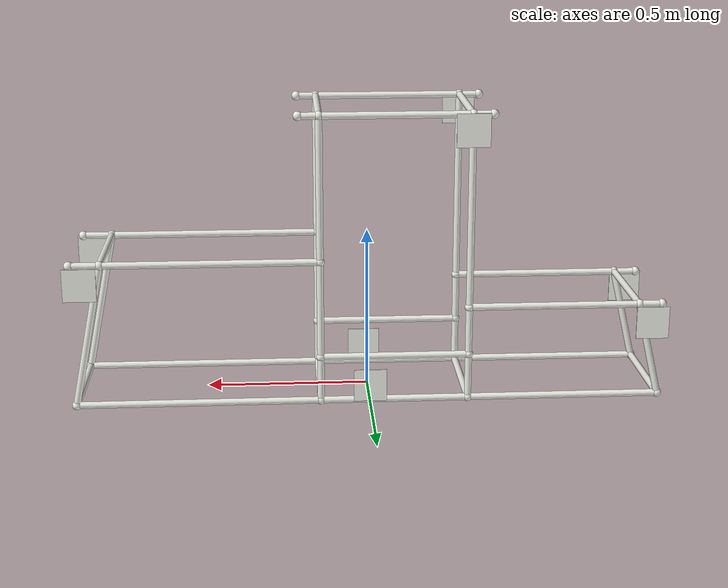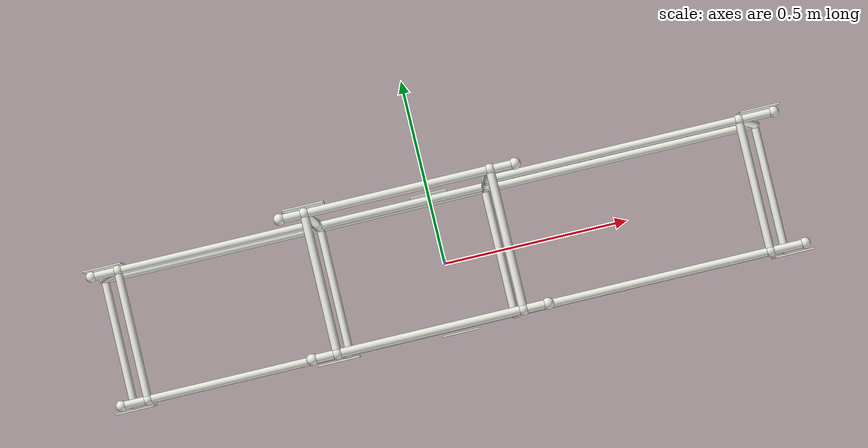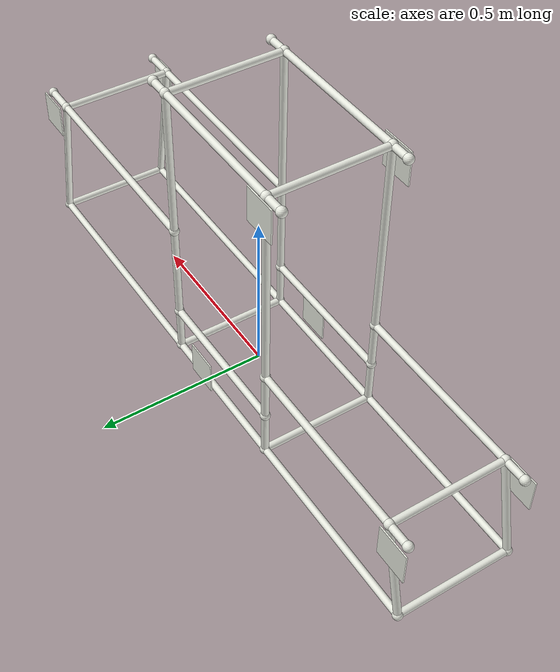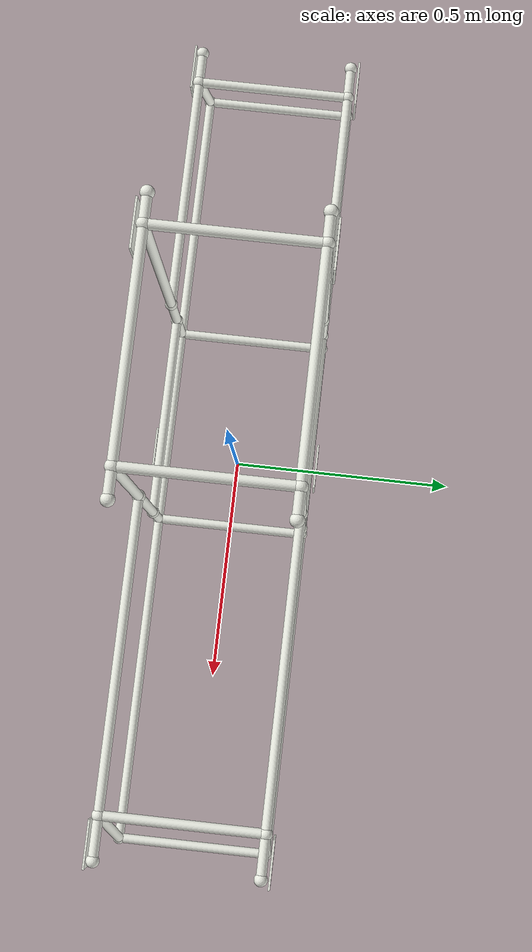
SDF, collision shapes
<?xml version='1.0' encoding='utf-8'?>
<sdf version="1.10">
  <model name="pvc_coral_garden">
    <static>true</static>
    <link name="pvc_frame">
      <collision name="base_longitudinal_00">
        <pose>0.000000000 -0.169500000 0.010500000 -0.000000000 1.570796327 0.000000000</pose>
        <geometry>
          <cylinder>
            <radius>0.0105</radius>
            <length>1.779000000</length>
          </cylinder>
        </geometry>
      </collision>
      <collision name="left_bay_rail_01">
        <pose>-0.594750000 -0.169500000 0.300000000 -0.000000000 1.570796327 0.000000000</pose>
        <geometry>
          <cylinder>
            <radius>0.0105</radius>
            <length>0.589500000</length>
          </cylinder>
        </geometry>
      </collision>
      <collision name="right_bay_rail_02">
        <pose>0.519750000 -0.169500000 0.450000000 -0.000000000 1.570796327 0.000000000</pose>
        <geometry>
          <cylinder>
            <radius>0.0105</radius>
            <length>0.739500000</length>
          </cylinder>
        </geometry>
      </collision>
      <collision name="central_upright_03">
        <pose>-0.300000000 -0.169500000 0.450000000 0.000000000 0.000000000 0.000000000</pose>
        <geometry>
          <cylinder>
            <radius>0.0105</radius>
            <length>0.879</length>
          </cylinder>
        </geometry>
      </collision>
      <collision name="central_upright_04">
        <pose>0.150000000 -0.169500000 0.450000000 0.000000000 0.000000000 0.000000000</pose>
        <geometry>
          <cylinder>
            <radius>0.0105</radius>
            <length>0.879</length>
          </cylinder>
        </geometry>
      </collision>
      <collision name="central_header_05">
        <pose>-0.075000000 -0.169500000 0.889500000 -0.000000000 1.570796327 0.000000000</pose>
        <geometry>
          <cylinder>
            <radius>0.0105</radius>
            <length>0.570000000</length>
          </cylinder>
        </geometry>
      </collision>
      <collision name="left_end_riser_06">
        <pose>-0.854750000 -0.169500000 0.155250000 0.000000000 0.235610302 0.000000000</pose>
        <geometry>
          <cylinder>
            <radius>0.0105</radius>
            <length>0.297725545</length>
          </cylinder>
        </geometry>
      </collision>
      <collision name="right_end_riser_07">
        <pose>0.844750000 -0.169500000 0.230250000 0.000000000 -0.200893578 0.000000000</pose>
        <geometry>
          <cylinder>
            <radius>0.0105</radius>
            <length>0.448520345</length>
          </cylinder>
        </geometry>
      </collision>
      <collision name="base_longitudinal_08">
        <pose>0.000000000 0.169500000 0.010500000 -0.000000000 1.570796327 0.000000000</pose>
        <geometry>
          <cylinder>
            <radius>0.0105</radius>
            <length>1.779000000</length>
          </cylinder>
        </geometry>
      </collision>
      <collision name="left_bay_rail_09">
        <pose>-0.594750000 0.169500000 0.300000000 -0.000000000 1.570796327 0.000000000</pose>
        <geometry>
          <cylinder>
            <radius>0.0105</radius>
            <length>0.589500000</length>
          </cylinder>
        </geometry>
      </collision>
      <collision name="right_bay_rail_10">
        <pose>0.519750000 0.169500000 0.450000000 -0.000000000 1.570796327 0.000000000</pose>
        <geometry>
          <cylinder>
            <radius>0.0105</radius>
            <length>0.739500000</length>
          </cylinder>
        </geometry>
      </collision>
      <collision name="central_upright_11">
        <pose>-0.300000000 0.169500000 0.450000000 0.000000000 0.000000000 0.000000000</pose>
        <geometry>
          <cylinder>
            <radius>0.0105</radius>
            <length>0.879000000</length>
          </cylinder>
        </geometry>
      </collision>
      <collision name="central_upright_12">
        <pose>0.150000000 0.169500000 0.450000000 0.000000000 0.000000000 0.000000000</pose>
        <geometry>
          <cylinder>
            <radius>0.0105</radius>
            <length>0.879000000</length>
          </cylinder>
        </geometry>
      </collision>
      <collision name="central_header_13">
        <pose>-0.075000000 0.169500000 0.889500000 -0.000000000 1.570796327 0.000000000</pose>
        <geometry>
          <cylinder>
            <radius>0.0105</radius>
            <length>0.570000000</length>
          </cylinder>
        </geometry>
      </collision>
      <collision name="left_end_riser_14">
        <pose>-0.854750000 0.169500000 0.155250000 0.000000000 0.235610302 0.000000000</pose>
        <geometry>
          <cylinder>
            <radius>0.0105</radius>
            <length>0.297725545</length>
          </cylinder>
        </geometry>
      </collision>
      <collision name="right_end_riser_15">
        <pose>0.844750000 0.169500000 0.230250000 0.000000000 -0.200893578 0.000000000</pose>
        <geometry>
          <cylinder>
            <radius>0.0105</radius>
            <length>0.448520345</length>
          </cylinder>
        </geometry>
      </collision>
      <collision name="base_crossmember_16">
        <pose>-0.889500000 0.000000000 0.010500000 -1.570796327 1.570796327 0.000000000</pose>
        <geometry>
          <cylinder>
            <radius>0.0105</radius>
            <length>0.339000000</length>
          </cylinder>
        </geometry>
      </collision>
      <collision name="base_crossmember_17">
        <pose>-0.300000000 0.000000000 0.010500000 -1.570796327 1.570796327 0.000000000</pose>
        <geometry>
          <cylinder>
            <radius>0.0105</radius>
            <length>0.339000000</length>
          </cylinder>
        </geometry>
      </collision>
      <collision name="base_crossmember_18">
        <pose>0.150000000 0.000000000 0.010500000 -1.570796327 1.570796327 0.000000000</pose>
        <geometry>
          <cylinder>
            <radius>0.0105</radius>
            <length>0.339000000</length>
          </cylinder>
        </geometry>
      </collision>
      <collision name="base_crossmember_19">
        <pose>0.889500000 0.000000000 0.010500000 -1.570796327 1.570796327 0.000000000</pose>
        <geometry>
          <cylinder>
            <radius>0.0105</radius>
            <length>0.339000000</length>
          </cylinder>
        </geometry>
      </collision>
      <collision name="left_top_crossmember_20">
        <pose>-0.820000000 0.000000000 0.300000000 -1.570796327 1.570796327 0.000000000</pose>
        <geometry>
          <cylinder>
            <radius>0.0105</radius>
            <length>0.339000000</length>
          </cylinder>
        </geometry>
      </collision>
      <collision name="right_top_crossmember_21">
        <pose>0.800000000 0.000000000 0.450000000 -1.570796327 1.570796327 0.000000000</pose>
        <geometry>
          <cylinder>
            <radius>0.0105</radius>
            <length>0.339000000</length>
          </cylinder>
        </geometry>
      </collision>
      <collision name="ridge_crossmember_22">
        <pose>-0.300000000 0.000000000 0.889500000 -1.570796327 0.000000000 0.000000000</pose>
        <geometry>
          <cylinder>
            <radius>0.0105</radius>
            <length>.339</length>
          </cylinder>
        </geometry>
      </collision>
      <collision name="ridge_crossmember_23">
        <pose>0.150000000 0.000000000 0.889500000 -1.570796327 0.000000000 0.000000000</pose>
        <geometry>
          <cylinder>
            <radius>0.0105</radius>
            <length>.339</length>
          </cylinder>
        </geometry>
      </collision>
      <collision name="central_lower_rail_24">
        <pose>-0.075000000 -0.169500000 0.150000000 -0.000000000 1.570796327 0.000000000</pose>
        <geometry>
          <cylinder>
            <radius>0.0105</radius>
            <length>0.450000000</length>
          </cylinder>
        </geometry>
      </collision>
      <collision name="central_lower_rail_25">
        <pose>-0.075000000 0.169500000 0.150000000 -0.000000000 1.570796327 0.000000000</pose>
        <geometry>
          <cylinder>
            <radius>0.0105</radius>
            <length>0.450000000</length>
          </cylinder>
        </geometry>
      </collision>
      <visual name="white_pvc">
        <geometry>
          <mesh>
            <uri>model://robot_description/worlds/assets/coral_garden/meshes/pvc_frame.stl</uri>
          </mesh>
        </geometry>
        <material>
          <ambient>.92 .93 .89 1</ambient>
          <diffuse>.92 .93 .89 1</diffuse>
          <specular>.18 .18 .18 1</specular>
        </material>
      </visual>
      <collision name="left_red_collision">
        <pose>-0.86 -0.1875 0.245 0 0 0</pose>
        <geometry>
          <box>
            <size>.1 .004 .1</size>
          </box>
        </geometry>
      </collision>
      <visual name="target_left_red_front">
        <pose>-0.86 -0.1896 0.245 0 0 0</pose>
        <geometry>
          <box>
            <size>.1 .0002 .1</size>
          </box>
        </geometry>
        <material>
          <ambient>.85 .025 .035 1</ambient>
          <diffuse>.85 .025 .035 1</diffuse>
          <specular>.18 .18 .18 1</specular>
        </material>
      </visual>
      <visual name="target_left_red_back">
        <pose>-0.86 -0.1854 0.245 0 0 0</pose>
        <geometry>
          <box>
            <size>.1 .0002 .1</size>
          </box>
        </geometry>
        <material>
          <ambient>.85 .025 .035 1</ambient>
          <diffuse>.85 .025 .035 1</diffuse>
          <specular>.18 .18 .18 1</specular>
        </material>
      </visual>
      <collision name="upper_red_collision">
        <pose>-0.3 -0.1875 .8445 0 0 0</pose>
        <geometry>
          <box>
            <size>.1 .004 .1</size>
          </box>
        </geometry>
      </collision>
      <visual name="target_upper_red_front">
        <pose>-0.3 -0.1896 .8445 0 0 0</pose>
        <geometry>
          <box>
            <size>.1 .0002 .1</size>
          </box>
        </geometry>
        <material>
          <ambient>.85 .025 .035 1</ambient>
          <diffuse>.85 .025 .035 1</diffuse>
          <specular>.18 .18 .18 1</specular>
        </material>
      </visual>
      <visual name="target_upper_red_back">
        <pose>-0.3 -0.1854 .8445 0 0 0</pose>
        <geometry>
          <box>
            <size>.1 .0002 .1</size>
          </box>
        </geometry>
        <material>
          <ambient>.85 .025 .035 1</ambient>
          <diffuse>.85 .025 .035 1</diffuse>
          <specular>.18 .18 .18 1</specular>
        </material>
      </visual>
      <collision name="bottom_red_collision">
        <pose>0 -0.1875 0.062 0 0 0</pose>
        <geometry>
          <box>
            <size>.1 .004 .1</size>
          </box>
        </geometry>
      </collision>
      <visual name="target_bottom_red_front">
        <pose>0 -0.1896 0.062 0 0 0</pose>
        <geometry>
          <box>
            <size>.1 .0002 .1</size>
          </box>
        </geometry>
        <material>
          <ambient>.85 .025 .035 1</ambient>
          <diffuse>.85 .025 .035 1</diffuse>
          <specular>.18 .18 .18 1</specular>
        </material>
      </visual>
      <visual name="target_bottom_red_back">
        <pose>0 -0.1854 0.062 0 0 0</pose>
        <geometry>
          <box>
            <size>.1 .0002 .1</size>
          </box>
        </geometry>
        <material>
          <ambient>.85 .025 .035 1</ambient>
          <diffuse>.85 .025 .035 1</diffuse>
          <specular>.18 .18 .18 1</specular>
        </material>
      </visual>
      <collision name="right_red_collision">
        <pose>0.86 -0.1875 0.395 0 0 0</pose>
        <geometry>
          <box>
            <size>.1 .004 .1</size>
          </box>
        </geometry>
      </collision>
      <visual name="target_right_red_front">
        <pose>0.86 -0.1896 0.395 0 0 0</pose>
        <geometry>
          <box>
            <size>.1 .0002 .1</size>
          </box>
        </geometry>
        <material>
          <ambient>.85 .025 .035 1</ambient>
          <diffuse>.85 .025 .035 1</diffuse>
          <specular>.18 .18 .18 1</specular>
        </material>
      </visual>
      <visual name="target_right_red_back">
        <pose>0.86 -0.1854 0.395 0 0 0</pose>
        <geometry>
          <box>
            <size>.1 .0002 .1</size>
          </box>
        </geometry>
        <material>
          <ambient>.85 .025 .035 1</ambient>
          <diffuse>.85 .025 .035 1</diffuse>
          <specular>.18 .18 .18 1</specular>
        </material>
      </visual>
      <collision name="left_red_collision_mirrored">
        <pose>-0.86 0.1875 0.245 0 0 0</pose>
        <geometry>
          <box>
            <size>.1 .004 .1</size>
          </box>
        </geometry>
      </collision>
      <visual name="target_left_red_front_mirrored">
        <pose>-0.86 0.1896 0.245 0 0 0</pose>
        <geometry>
          <box>
            <size>.1 .0002 .1</size>
          </box>
        </geometry>
        <material>
          <ambient>.85 .025 .035 1</ambient>
          <diffuse>.85 .025 .035 1</diffuse>
          <specular>.18 .18 .18 1</specular>
        </material>
      </visual>
      <visual name="target_left_red_back_mirrored">
        <pose>-0.86 0.1854 0.245 0 0 0</pose>
        <geometry>
          <box>
            <size>.1 .0002 .1</size>
          </box>
        </geometry>
        <material>
          <ambient>.85 .025 .035 1</ambient>
          <diffuse>.85 .025 .035 1</diffuse>
          <specular>.18 .18 .18 1</specular>
        </material>
      </visual>
      <collision name="upper_red_collision_mirrored">
        <pose>-0.3 0.1875 .8445 0 0 0</pose>
        <geometry>
          <box>
            <size>.1 .004 .1</size>
          </box>
        </geometry>
      </collision>
      <visual name="target_upper_red_front_mirrored">
        <pose>-0.3 0.1896 .8445 0 0 0</pose>
        <geometry>
          <box>
            <size>.1 .0002 .1</size>
          </box>
        </geometry>
        <material>
          <ambient>.85 .025 .035 1</ambient>
          <diffuse>.85 .025 .035 1</diffuse>
          <specular>.18 .18 .18 1</specular>
        </material>
      </visual>
      <visual name="target_upper_red_back_mirrored">
        <pose>-0.3 0.1854 .8445 0 0 0</pose>
        <geometry>
          <box>
            <size>.1 .0002 .1</size>
          </box>
        </geometry>
        <material>
          <ambient>.85 .025 .035 1</ambient>
          <diffuse>.85 .025 .035 1</diffuse>
          <specular>.18 .18 .18 1</specular>
        </material>
      </visual>
      <collision name="bottom_red_collision_mirrored">
        <pose>0 0.1875 0.062 0 0 0</pose>
        <geometry>
          <box>
            <size>.1 .004 .1</size>
          </box>
        </geometry>
      </collision>
      <visual name="target_bottom_red_front_mirrored">
        <pose>0 0.1896 0.062 0 0 0</pose>
        <geometry>
          <box>
            <size>.1 .0002 .1</size>
          </box>
        </geometry>
        <material>
          <ambient>.85 .025 .035 1</ambient>
          <diffuse>.85 .025 .035 1</diffuse>
          <specular>.18 .18 .18 1</specular>
        </material>
      </visual>
      <visual name="target_bottom_red_back_mirrored">
        <pose>0 0.1854 0.062 0 0 0</pose>
        <geometry>
          <box>
            <size>.1 .0002 .1</size>
          </box>
        </geometry>
        <material>
          <ambient>.85 .025 .035 1</ambient>
          <diffuse>.85 .025 .035 1</diffuse>
          <specular>.18 .18 .18 1</specular>
        </material>
      </visual>
      <collision name="right_red_collision_mirrored">
        <pose>0.86 0.1875 0.395 0 0 0</pose>
        <geometry>
          <box>
            <size>.1 .004 .1</size>
          </box>
        </geometry>
      </collision>
      <visual name="target_right_red_front_mirrored">
        <pose>0.86 0.1896 0.395 0 0 0</pose>
        <geometry>
          <box>
            <size>.1 .0002 .1</size>
          </box>
        </geometry>
        <material>
          <ambient>.85 .025 .035 1</ambient>
          <diffuse>.85 .025 .035 1</diffuse>
          <specular>.18 .18 .18 1</specular>
        </material>
      </visual>
      <visual name="target_right_red_back_mirrored">
        <pose>0.86 0.1854 0.395 0 0 0</pose>
        <geometry>
          <box>
            <size>.1 .0002 .1</size>
          </box>
        </geometry>
        <material>
          <ambient>.85 .025 .035 1</ambient>
          <diffuse>.85 .025 .035 1</diffuse>
          <specular>.18 .18 .18 1</specular>
        </material>
      </visual>
      <collision name="pvc_joint_00">
        <pose>-0.8895 -0.1695 0.0105 0 0 0</pose>
        <geometry>
          <sphere>
            <radius>.014</radius>
          </sphere>
        </geometry>
      </collision>
      <collision name="pvc_joint_01">
        <pose>-0.8895 -0.1695 0.3 0 0 0</pose>
        <geometry>
          <sphere>
            <radius>.014</radius>
          </sphere>
        </geometry>
      </collision>
      <collision name="pvc_joint_02">
        <pose>-0.8895 0.1695 0.0105 0 0 0</pose>
        <geometry>
          <sphere>
            <radius>.014</radius>
          </sphere>
        </geometry>
      </collision>
      <collision name="pvc_joint_03">
        <pose>-0.8895 0.1695 0.3 0 0 0</pose>
        <geometry>
          <sphere>
            <radius>.014</radius>
          </sphere>
        </geometry>
      </collision>
      <collision name="pvc_joint_04">
        <pose>-0.82 -0.1695 0.3 0 0 0</pose>
        <geometry>
          <sphere>
            <radius>.014</radius>
          </sphere>
        </geometry>
      </collision>
      <collision name="pvc_joint_05">
        <pose>-0.82 0.1695 0.3 0 0 0</pose>
        <geometry>
          <sphere>
            <radius>.014</radius>
          </sphere>
        </geometry>
      </collision>
      <collision name="pvc_joint_06">
        <pose>-0.36 -0.1695 0.8895 0 0 0</pose>
        <geometry>
          <sphere>
            <radius>.014</radius>
          </sphere>
        </geometry>
      </collision>
      <collision name="pvc_joint_07">
        <pose>-0.36 0.1695 0.8895 0 0 0</pose>
        <geometry>
          <sphere>
            <radius>.014</radius>
          </sphere>
        </geometry>
      </collision>
      <collision name="pvc_joint_08">
        <pose>-0.3 -0.1695 0.0105 0 0 0</pose>
        <geometry>
          <sphere>
            <radius>.014</radius>
          </sphere>
        </geometry>
      </collision>
      <collision name="pvc_joint_09">
        <pose>-0.3 -0.1695 0.15 0 0 0</pose>
        <geometry>
          <sphere>
            <radius>.014</radius>
          </sphere>
        </geometry>
      </collision>
      <collision name="pvc_joint_10">
        <pose>-0.3 -0.1695 0.3 0 0 0</pose>
        <geometry>
          <sphere>
            <radius>.014</radius>
          </sphere>
        </geometry>
      </collision>
      <collision name="pvc_joint_11">
        <pose>-0.3 -0.1695 0.8895 0 0 0</pose>
        <geometry>
          <sphere>
            <radius>.014</radius>
          </sphere>
        </geometry>
      </collision>
      <collision name="pvc_joint_12">
        <pose>-0.3 0.1695 0.0105 0 0 0</pose>
        <geometry>
          <sphere>
            <radius>.014</radius>
          </sphere>
        </geometry>
      </collision>
      <collision name="pvc_joint_13">
        <pose>-0.3 0.1695 0.15 0 0 0</pose>
        <geometry>
          <sphere>
            <radius>.014</radius>
          </sphere>
        </geometry>
      </collision>
      <collision name="pvc_joint_14">
        <pose>-0.3 0.1695 0.3 0 0 0</pose>
        <geometry>
          <sphere>
            <radius>.014</radius>
          </sphere>
        </geometry>
      </collision>
      <collision name="pvc_joint_15">
        <pose>-0.3 0.1695 0.8895 0 0 0</pose>
        <geometry>
          <sphere>
            <radius>.014</radius>
          </sphere>
        </geometry>
      </collision>
      <collision name="pvc_joint_16">
        <pose>0.15 -0.1695 0.0105 0 0 0</pose>
        <geometry>
          <sphere>
            <radius>.014</radius>
          </sphere>
        </geometry>
      </collision>
      <collision name="pvc_joint_17">
        <pose>0.15 -0.1695 0.15 0 0 0</pose>
        <geometry>
          <sphere>
            <radius>.014</radius>
          </sphere>
        </geometry>
      </collision>
      <collision name="pvc_joint_18">
        <pose>0.15 -0.1695 0.45 0 0 0</pose>
        <geometry>
          <sphere>
            <radius>.014</radius>
          </sphere>
        </geometry>
      </collision>
      <collision name="pvc_joint_19">
        <pose>0.15 -0.1695 0.8895 0 0 0</pose>
        <geometry>
          <sphere>
            <radius>.014</radius>
          </sphere>
        </geometry>
      </collision>
      <collision name="pvc_joint_20">
        <pose>0.15 0.1695 0.0105 0 0 0</pose>
        <geometry>
          <sphere>
            <radius>.014</radius>
          </sphere>
        </geometry>
      </collision>
      <collision name="pvc_joint_21">
        <pose>0.15 0.1695 0.15 0 0 0</pose>
        <geometry>
          <sphere>
            <radius>.014</radius>
          </sphere>
        </geometry>
      </collision>
      <collision name="pvc_joint_22">
        <pose>0.15 0.1695 0.45 0 0 0</pose>
        <geometry>
          <sphere>
            <radius>.014</radius>
          </sphere>
        </geometry>
      </collision>
      <collision name="pvc_joint_23">
        <pose>0.15 0.1695 0.8895 0 0 0</pose>
        <geometry>
          <sphere>
            <radius>.014</radius>
          </sphere>
        </geometry>
      </collision>
      <collision name="pvc_joint_24">
        <pose>0.21 -0.1695 0.8895 0 0 0</pose>
        <geometry>
          <sphere>
            <radius>.014</radius>
          </sphere>
        </geometry>
      </collision>
      <collision name="pvc_joint_25">
        <pose>0.21 0.1695 0.8895 0 0 0</pose>
        <geometry>
          <sphere>
            <radius>.014</radius>
          </sphere>
        </geometry>
      </collision>
      <collision name="pvc_joint_26">
        <pose>0.8 -0.1695 0.45 0 0 0</pose>
        <geometry>
          <sphere>
            <radius>.014</radius>
          </sphere>
        </geometry>
      </collision>
      <collision name="pvc_joint_27">
        <pose>0.8 0.1695 0.45 0 0 0</pose>
        <geometry>
          <sphere>
            <radius>.014</radius>
          </sphere>
        </geometry>
      </collision>
      <collision name="pvc_joint_28">
        <pose>0.8895 -0.1695 0.0105 0 0 0</pose>
        <geometry>
          <sphere>
            <radius>.014</radius>
          </sphere>
        </geometry>
      </collision>
      <collision name="pvc_joint_29">
        <pose>0.8895 -0.1695 0.45 0 0 0</pose>
        <geometry>
          <sphere>
            <radius>.014</radius>
          </sphere>
        </geometry>
      </collision>
      <collision name="pvc_joint_30">
        <pose>0.8895 0.1695 0.0105 0 0 0</pose>
        <geometry>
          <sphere>
            <radius>.014</radius>
          </sphere>
        </geometry>
      </collision>
      <collision name="pvc_joint_31">
        <pose>0.8895 0.1695 0.45 0 0 0</pose>
        <geometry>
          <sphere>
            <radius>.014</radius>
          </sphere>
        </geometry>
      </collision>
    </link>
  </model>
</sdf>
